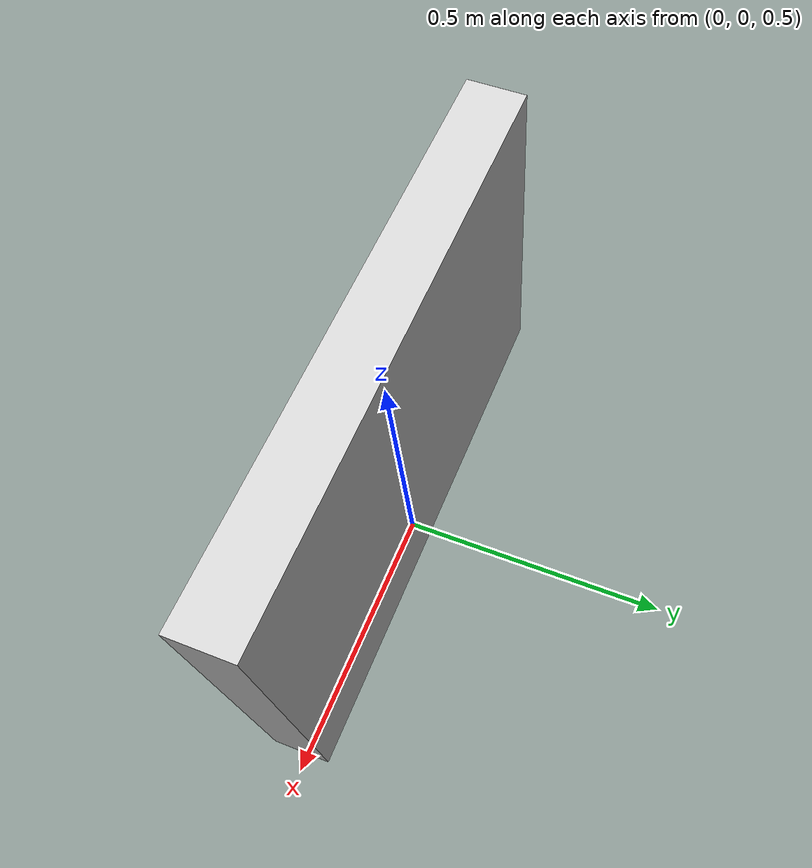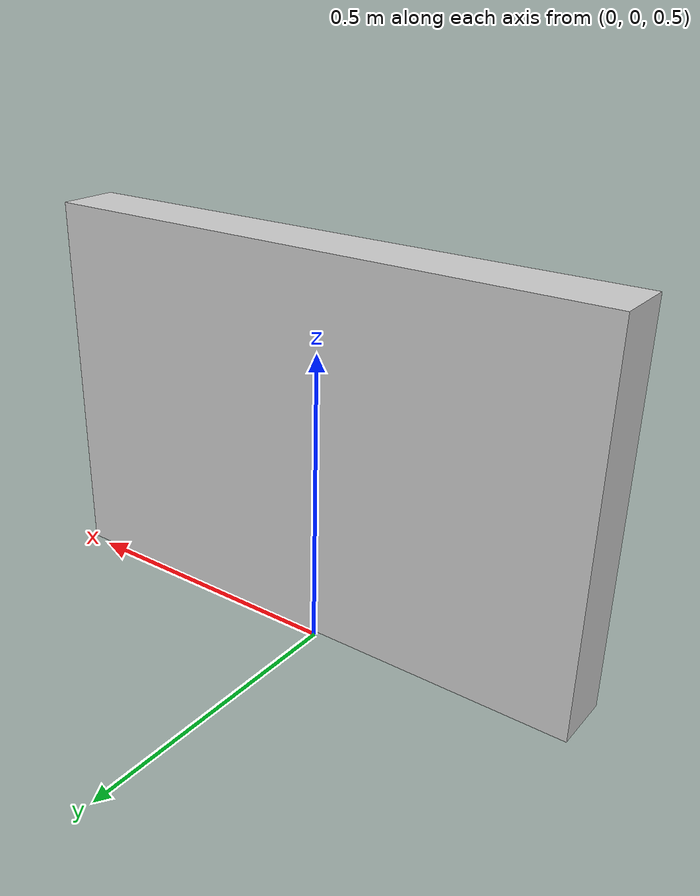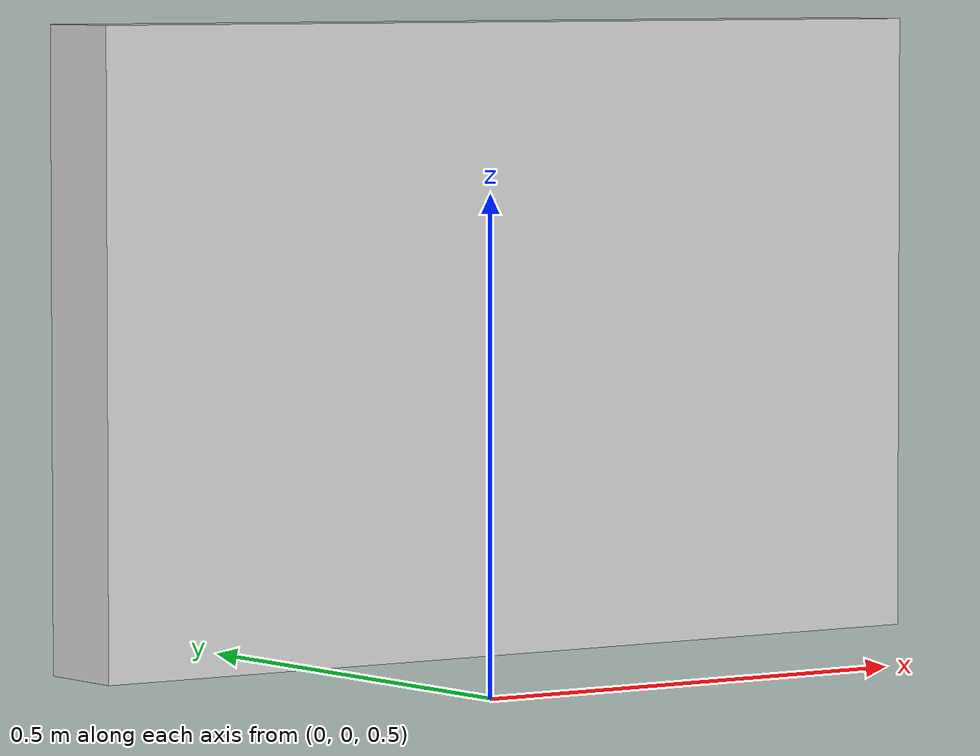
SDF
<?xml version="1.0"?>
<sdf version="1.6">
  <model name="rwc2013/tv">
    <link name="1_link">
      <collision name="1_col">
        <geometry>
          <box>
            <size>0.95 0.1 0.62</size>
          </box>
        </geometry>
      </collision>
      <visual name="1_vis">
        <geometry>
          <box>
            <size>0.95 0.1 0.62</size>
          </box>
        </geometry>
        <material>
          <ambient>0.8 0.8 0.8 1</ambient>
        </material>
      </visual>
      <pose>0.0 0.0 0.86 0 0 0</pose>
    </link>
    <static>true</static>
  </model>
</sdf>
